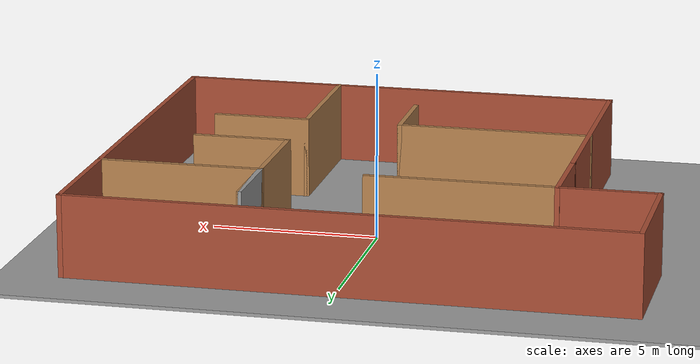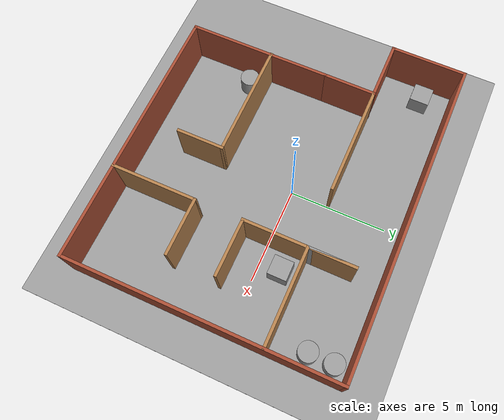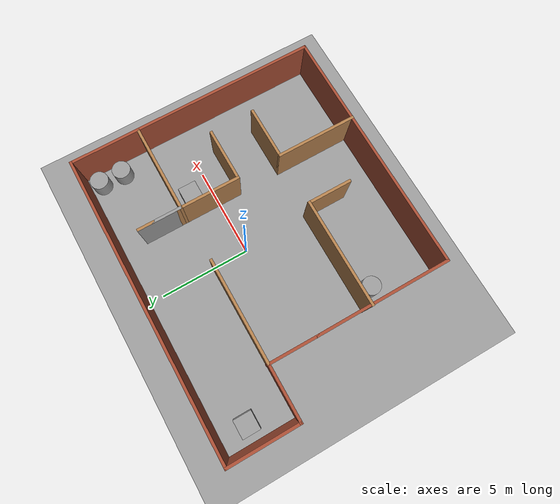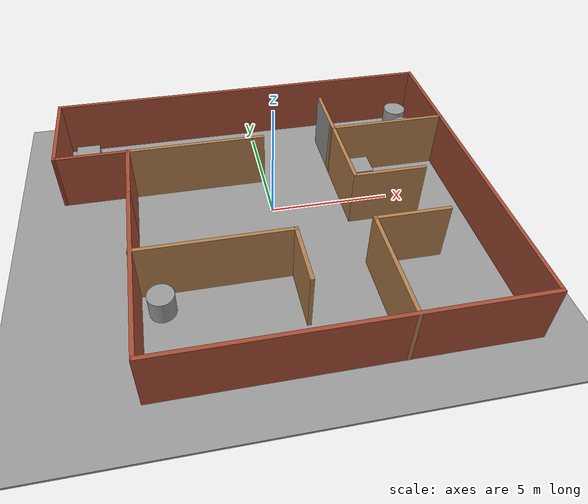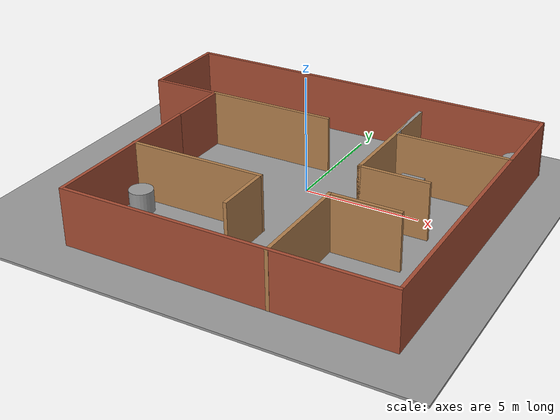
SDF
<sdf version="1.6">
 <world name="default">
  <light name="sun" type="directional">
   <pose>0 0 10 0 -0 0</pose>
   <diffuse>0.8 0.8 0.8 1</diffuse>
   <specular>0.2 0.2 0.2 1</specular>
   <attenuation>
    <range>1000</range>
    <constant>0.9</constant>
    <linear>0.01</linear>
    <quadratic>0.001</quadratic>
   </attenuation>
   <direction>-0.5 0.1 -0.9</direction>
  </light>
  <model name="ground_plane">
   <static>1</static>
   <link name="link">
    <collision name="collision">
     <geometry><plane><normal>0 0 1</normal><size>100 100</size></plane></geometry>
     <surface>
      <contact><collide_bitmask>65535</collide_bitmask></contact>
      <friction><ode><mu>100</mu><mu2>50</mu2></ode></friction>
     </surface>
    </collision>
    <visual name="visual">
     <cast_shadows>0</cast_shadows>
     <geometry><plane><normal>0 0 1</normal><size>100 100</size></plane></geometry>
     <material>
      <script><uri>file://media/materials/scripts/gazebo.material</uri><name>Gazebo/Grey</name></script>
     </material>
    </visual>
   </link>
  </model>
  <gravity>0 0 -9.8</gravity>
  <magnetic_field>6e-06 2.3e-05 -4.2e-05</magnetic_field>
  <atmosphere type="adiabatic"/>
  <physics name="default_physics" default="0" type="ode">
   <max_step_size>0.001</max_step_size>
   <real_time_factor>1</real_time_factor>
   <real_time_update_rate>1000</real_time_update_rate>
  </physics>
  <scene><ambient>0.4 0.4 0.4 1</ambient><background>0.7 0.7 0.7 1</background><shadows>1</shadows></scene>
  <audio><device>default</device></audio>
  <spherical_coordinates>
   <surface_model>EARTH_WGS84</surface_model>
   <latitude_deg>0</latitude_deg>
   <longitude_deg>0</longitude_deg>
   <elevation>0</elevation>
   <heading_deg>0</heading_deg>
  </spherical_coordinates>
  <model name="first_office_environment">
   <pose>-0.373213 -1.13174 0 0 -0 0</pose>
   <link name="Wall_13">
    <collision name="Wall_13_Collision">
     <geometry><box><size>4 0.15 2.5</size></box></geometry>
     <pose>0 0 1.25 0 -0 0</pose>
    </collision>
    <visual name="Wall_13_Visual">
     <pose>0 0 1.25 0 -0 0</pose>
     <geometry><box><size>4 0.15 2.5</size></box></geometry>
     <material>
      <script><uri>file://media/materials/scripts/gazebo.material</uri><name>Gazebo/Bricks</name></script>
      <ambient>1 1 1 1</ambient>
     </material>
     <meta><layer>0</layer></meta>
    </visual>
    <pose>-8.26482 5.00336 0 0 -0 -1.5708</pose>
   </link>
   <link name="Wall_14">
    <collision name="Wall_14_Collision">
     <geometry><box><size>3 0.15 2.5</size></box></geometry>
     <pose>0 0 1.25 0 -0 0</pose>
    </collision>
    <visual name="Wall_14_Visual">
     <pose>0 0 1.25 0 -0 0</pose>
     <geometry><box><size>3 0.15 2.5</size></box></geometry>
     <material>
      <script><uri>file://media/materials/scripts/gazebo.material</uri><name>Gazebo/Bricks</name></script>
      <ambient>1 1 1 1</ambient>
     </material>
     <meta><layer>0</layer></meta>
    </visual>
    <pose>-6.83982 3.07836 0 0 -0 0</pose>
   </link>
   <link name="Wall_17">
    <collision name="Wall_17_Collision">
     <geometry><box><size>2.82002 0.15 2.5</size></box></geometry>
     <pose>0 0 1.25 0 -0 0</pose>
    </collision>
    <visual name="Wall_17_Visual">
     <pose>0 0 1.25 0 -0 0</pose>
     <geometry><box><size>2.82002 0.15 2.5</size></box></geometry>
     <material>
      <script><uri>file://media/materials/scripts/gazebo.material</uri><name>Gazebo/Bricks</name></script>
      <ambient>1 1 1 1</ambient>
     </material>
     <meta><layer>0</layer></meta>
    </visual>
    <pose>-5.32643 1.76334 0 0 -0 1.56425</pose>
   </link>
   <link name="Wall_19">
    <collision name="Wall_19_Collision">
     <geometry><box><size>5.75 0.15 2.5</size></box></geometry>
     <pose>0 0 1.25 0 -0 0</pose>
    </collision>
    <visual name="Wall_19_Visual">
     <pose>0 0 1.25 0 -0 0</pose>
     <geometry><box><size>5.75 0.15 2.5</size></box></geometry>
     <material>
      <script><uri>file://media/materials/scripts/gazebo.material</uri><name>Gazebo/Wood</name></script>
      <ambient>1 1 1 1</ambient>
     </material>
     <meta><layer>0</layer></meta>
    </visual>
    <pose>-2.51769 3.08083 0 0 -0 0</pose>
   </link>
   <link name="Wall_2">
    <collision name="Wall_2_Collision">
     <geometry><box><size>7.5 0.15 2.5</size></box></geometry>
     <pose>0 0 1.25 0 -0 0</pose>
    </collision>
    <visual name="Wall_2_Visual">
     <pose>0 0 1.25 0 -0 0</pose>
     <geometry><box><size>7.5 0.15 2.5</size></box></geometry>
     <material>
      <script><uri>file://media/materials/scripts/gazebo.material</uri><name>Gazebo/Bricks</name></script>
      <ambient>1 1 1 1</ambient>
     </material>
     <meta><layer>0</layer></meta>
    </visual>
    <pose>-5.33518 -3.24663 0 0 -0 -1.5708</pose>
   </link>
   <link name="Wall_21">
    <collision name="Wall_21_Collision">
     <geometry><box><size>5 0.15 2.5</size></box></geometry>
     <pose>0 0 1.25 0 -0 0</pose>
    </collision>
    <visual name="Wall_21_Visual">
     <pose>0 0 1.25 0 -0 0</pose>
     <geometry><box><size>5 0.15 2.5</size></box></geometry>
     <material>
      <script><uri>file://media/materials/scripts/gazebo.material</uri><name>Gazebo/Wood</name></script>
      <ambient>1 1 1 1</ambient>
     </material>
     <meta><layer>0</layer></meta>
    </visual>
    <pose>5.82391 3.13582 0 0 -0 3.14159</pose>
   </link>
   <link name="Wall_22">
    <collision name="Wall_22_Collision">
     <geometry><box><size>2.5 0.15 2.5</size></box></geometry>
     <pose>0 0 1.25 0 -0 0</pose>
    </collision>
    <visual name="Wall_22_Visual">
     <pose>0 0 1.25 0 -0 0</pose>
     <geometry><box><size>2.5 0.15 2.5</size></box></geometry>
     <material>
      <script><uri>file://media/materials/scripts/gazebo.material</uri><name>Gazebo/Grey</name></script>
      <ambient>1 1 1 1</ambient>
     </material>
     <meta><layer>0</layer></meta>
    </visual>
    <pose>3.39891 4.31082 0 0 -0 1.5708</pose>
   </link>
   <link name="Wall_23">
    <collision name="Wall_23_Collision">
     <geometry><box><size>5.75 0.15 2.5</size></box></geometry>
     <pose>0 0 1.25 0 -0 0</pose>
    </collision>
    <visual name="Wall_23_Visual">
     <pose>0 0 1.25 0 -0 0</pose>
     <geometry><box><size>5.75 0.15 2.5</size></box></geometry>
     <material>
      <script><uri>file://media/materials/scripts/gazebo.material</uri><name>Gazebo/Wood</name></script>
      <ambient>1 1 1 1</ambient>
     </material>
     <meta><layer>0</layer></meta>
    </visual>
    <pose>3.39891 2.68582 0 0 -0 -1.5708</pose>
   </link>
   <link name="Wall_24">
    <collision name="Wall_24_Collision">
     <geometry><box><size>3 0.15 2.5</size></box></geometry>
     <pose>0 0 1.25 0 -0 0</pose>
    </collision>
    <visual name="Wall_24_Visual">
     <pose>0 0 1.25 0 -0 0</pose>
     <geometry><box><size>3 0.15 2.5</size></box></geometry>
     <material>
      <script><uri>file://media/materials/scripts/gazebo.material</uri><name>Gazebo/Wood</name></script>
      <ambient>1 1 1 1</ambient>
     </material>
     <meta><layer>0</layer></meta>
    </visual>
    <pose>4.82391 -0.11418 0 0 -0 0</pose>
   </link>
   <link name="Wall_29">
    <collision name="Wall_29_Collision">
     <geometry><box><size>4.5 0.15 2.5</size></box></geometry>
     <pose>0 0 1.25 0 -0 0</pose>
    </collision>
    <visual name="Wall_29_Visual">
     <pose>0 0 1.25 0 -0 0</pose>
     <geometry><box><size>4.5 0.15 2.5</size></box></geometry>
     <material>
      <script><uri>file://media/materials/scripts/gazebo.material</uri><name>Gazebo/Wood</name></script>
      <ambient>1 1 1 1</ambient>
     </material>
     <meta><layer>0</layer></meta>
    </visual>
    <pose>3.41565 -4.75337 0 0 -0 1.5708</pose>
   </link>
   <link name="Wall_3">
    <collision name="Wall_3_Collision">
     <geometry><box><size>13.75 0.15 2.5</size></box></geometry>
     <pose>0 0 1.25 0 -0 0</pose>
    </collision>
    <visual name="Wall_3_Visual">
     <pose>0 0 1.25 0 -0 0</pose>
     <geometry><box><size>13.75 0.15 2.5</size></box></geometry>
     <material>
      <script><uri>file://media/materials/scripts/gazebo.material</uri><name>Gazebo/Bricks</name></script>
      <ambient>1 1 1 1</ambient>
     </material>
     <meta><layer>0</layer></meta>
    </visual>
    <pose>1.46482 -6.92164 0 0 -0 0</pose>
   </link>
   <link name="Wall_30">
    <collision name="Wall_30_Collision">
     <geometry><box><size>3 0.15 2.5</size></box></geometry>
     <pose>0 0 1.25 0 -0 0</pose>
    </collision>
    <visual name="Wall_30_Visual">
     <pose>0 0 1.25 0 -0 0</pose>
     <geometry><box><size>3 0.15 2.5</size></box></geometry>
     <material>
      <script><uri>file://media/materials/scripts/gazebo.material</uri><name>Gazebo/Wood</name></script>
      <ambient>1 1 1 1</ambient>
     </material>
     <meta><layer>0</layer></meta>
    </visual>
    <pose>4.84065 -2.57837 0 0 -0 0</pose>
   </link>
   <link name="Wall_32">
    <collision name="Wall_32_Collision">
     <geometry><box><size>6 0.15 2.5</size></box></geometry>
     <pose>0 0 1.25 0 -0 0</pose>
    </collision>
    <visual name="Wall_32_Visual">
     <pose>0 0 1.25 0 -0 0</pose>
     <geometry><box><size>6 0.15 2.5</size></box></geometry>
     <material>
      <script><uri>file://media/materials/scripts/gazebo.material</uri><name>Gazebo/Wood</name></script>
      <ambient>1 1 1 1</ambient>
     </material>
     <meta><layer>0</layer></meta>
    </visual>
    <pose>-2.43874 -2.58455 0 0 -0 0</pose>
   </link>
   <link name="Wall_33">
    <collision name="Wall_33_Collision">
     <geometry><box><size>2.5 0.15 2.5</size></box></geometry>
     <pose>0 0 1.25 0 -0 0</pose>
    </collision>
    <visual name="Wall_33_Visual">
     <pose>0 0 1.25 0 -0 0</pose>
     <geometry><box><size>2.5 0.15 2.5</size></box></geometry>
     <material>
      <script><uri>file://media/materials/scripts/gazebo.material</uri><name>Gazebo/Wood</name></script>
      <ambient>1 1 1 1</ambient>
     </material>
     <meta><layer>0</layer></meta>
    </visual>
    <pose>0.486255 -3.75955 0 0 -0 -1.5708</pose>
   </link>
   <link name="Wall_4">
    <collision name="Wall_4_Collision">
     <geometry><box><size>14 0.15 2.5</size></box></geometry>
     <pose>0 0 1.25 0 -0 0</pose>
    </collision>
    <visual name="Wall_4_Visual">
     <pose>0 0 1.25 0 -0 0</pose>
     <geometry><box><size>14 0.15 2.5</size></box></geometry>
     <material>
      <script><uri>file://media/materials/scripts/gazebo.material</uri><name>Gazebo/Bricks</name></script>
      <ambient>1 1 1 1</ambient>
     </material>
     <meta><layer>0</layer></meta>
    </visual>
    <pose>8.26482 0.003365 0 0 -0 1.5708</pose>
   </link>
   <link name="Wall_5">
    <collision name="Wall_5_Collision">
     <geometry><box><size>16.6796 0.15 2.5</size></box></geometry>
     <pose>0 0 1.25 0 -0 0</pose>
    </collision>
    <visual name="Wall_5_Visual">
     <pose>0 0 1.25 0 -0 0</pose>
     <geometry><box><size>16.6796 0.15 2.5</size></box></geometry>
     <material>
      <script><uri>file://media/materials/scripts/gazebo.material</uri><name>Gazebo/Bricks</name></script>
      <ambient>1 1 1 1</ambient>
     </material>
     <meta><layer>0</layer></meta>
    </visual>
    <pose>-0 6.92837 0 0 -0 3.14159</pose>
   </link>
   <static>1</static>
  </model>
  <model name="unit_box">
   <pose>4.05035 1.11879 0.499999 2e-06 -0 0</pose>
   <link name="link">
    <inertial>
     <mass>1</mass>
     <inertia>
      <ixx>0.166667</ixx>
      <ixy>0</ixy>
      <ixz>0</ixz>
      <iyy>0.166667</iyy>
      <iyz>0</iyz>
      <izz>0.166667</izz>
     </inertia>
    </inertial>
    <collision name="collision"><geometry><box><size>1 1 1</size></box></geometry></collision>
    <visual name="visual">
     <geometry><box><size>1 1 1</size></box></geometry>
     <material>
      <script><name>Gazebo/Grey</name><uri>file://media/materials/scripts/gazebo.material</uri></script>
     </material>
    </visual>
   </link>
  </model>
  <model name="unit_cylinder">
   <pose>7.07719 5.07842 0.499997 3e-06 3e-06 0</pose>
   <link name="link">
    <inertial>
     <mass>1</mass>
     <inertia><ixx>0.145833</ixx><ixy>0</ixy><ixz>0</ixz><iyy>0.145833</iyy><iyz>0</iyz><izz>0.125</izz></inertia>
    </inertial>
    <collision name="collision">
     <geometry><cylinder><radius>0.5</radius><length>1</length></cylinder></geometry>
    </collision>
    <visual name="visual">
     <geometry><cylinder><radius>0.5</radius><length>1</length></cylinder></geometry>
     <material>
      <script><name>Gazebo/Grey</name><uri>file://media/materials/scripts/gazebo.material</uri></script>
     </material>
    </visual>
   </link>
  </model>
  <model name="unit_cylinder_0">
   <pose>7.06234 3.78901 0.499993 -3e-06 -3e-06 0</pose>
   <link name="link">
    <inertial>
     <mass>1</mass>
     <inertia><ixx>0.145833</ixx><ixy>0</ixy><ixz>0</ixz><iyy>0.145833</iyy><iyz>0</iyz><izz>0.125</izz></inertia>
    </inertial>
    <collision name="collision">
     <geometry><cylinder><radius>0.5</radius><length>1</length></cylinder></geometry>
    </collision>
    <visual name="visual">
     <geometry><cylinder><radius>0.5</radius><length>1</length></cylinder></geometry>
     <material>
      <script><name>Gazebo/Grey</name><uri>file://media/materials/scripts/gazebo.material</uri></script>
     </material>
    </visual>
   </link>
  </model>
  <model name="ground_plane_0">
   <static>1</static>
   <link name="link">
    <collision name="collision">
     <geometry><plane><normal>0 0 1</normal><size>100 100</size></plane></geometry>
     <surface>
      <contact><collide_bitmask>65535</collide_bitmask></contact>
      <friction><ode><mu>100</mu><mu2>50</mu2></ode></friction>
     </surface>
    </collision>
    <visual name="visual">
     <cast_shadows>0</cast_shadows>
     <geometry><plane><normal>0 0 1</normal><size>100 100</size></plane></geometry>
     <material>
      <script><uri>file://media/materials/scripts/gazebo.material</uri><name>Gazebo/Grey</name></script>
     </material>
    </visual>
   </link>
   <pose>-13.3267 -8.90479 0 0 -0 0</pose>
  </model>
  <model name="unit_box_0">
   <pose>-7.61948 4.20148 0.499993 0 -6e-06 0</pose>
   <link name="link">
    <inertial>
     <mass>1</mass>
     <inertia>
      <ixx>0.166667</ixx>
      <ixy>0</ixy>
      <ixz>0</ixz>
      <iyy>0.166667</iyy>
      <iyz>0</iyz>
      <izz>0.166667</izz>
     </inertia>
    </inertial>
    <collision name="collision"><geometry><box><size>1 1 1</size></box></geometry></collision>
    <visual name="visual">
     <geometry><box><size>1 1 1</size></box></geometry>
     <material>
      <script><name>Gazebo/Grey</name><uri>file://media/materials/scripts/gazebo.material</uri></script>
     </material>
    </visual>
   </link>
  </model>
  <model name="unit_cylinder_1">
   <pose>-4.88936 -4.59258 0.499997 -4e-06 -4e-06 -0</pose>
   <link name="link">
    <inertial>
     <mass>1</mass>
     <inertia><ixx>0.145833</ixx><ixy>0</ixy><ixz>0</ixz><iyy>0.145833</iyy><iyz>0</iyz><izz>0.125</izz></inertia>
    </inertial>
    <collision name="collision">
     <geometry><cylinder><radius>0.5</radius><length>1</length></cylinder></geometry>
    </collision>
    <visual name="visual">
     <geometry><cylinder><radius>0.5</radius><length>1</length></cylinder></geometry>
     <material>
      <script><name>Gazebo/Grey</name><uri>file://media/materials/scripts/gazebo.material</uri></script>
     </material>
    </visual>
   </link>
  </model>
 </world>
</sdf>
